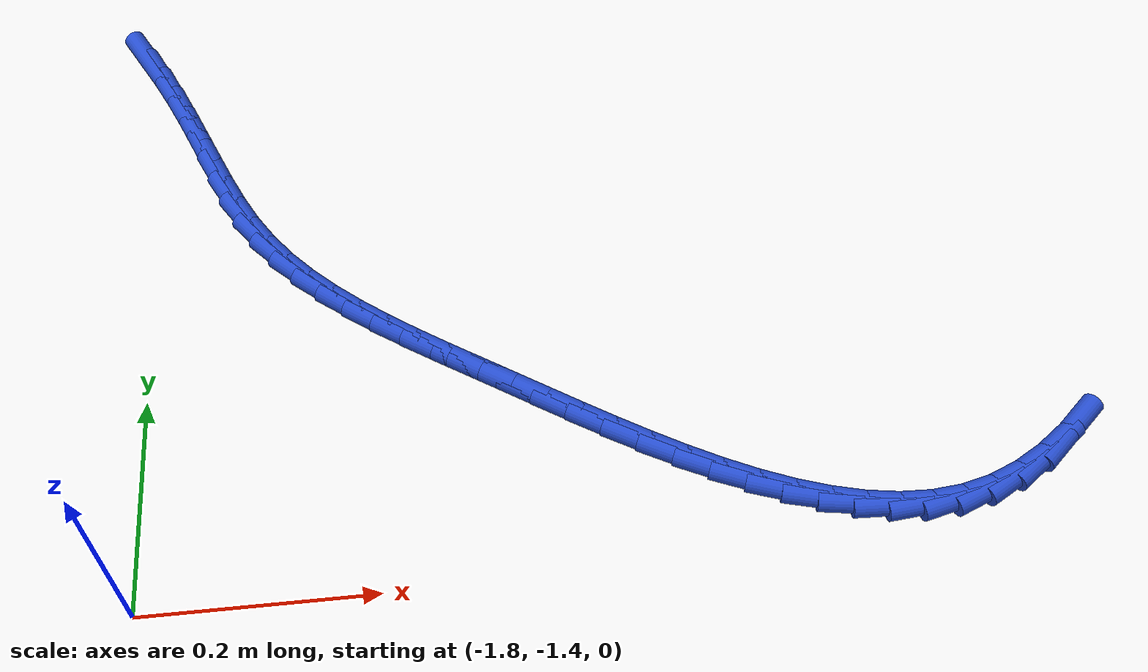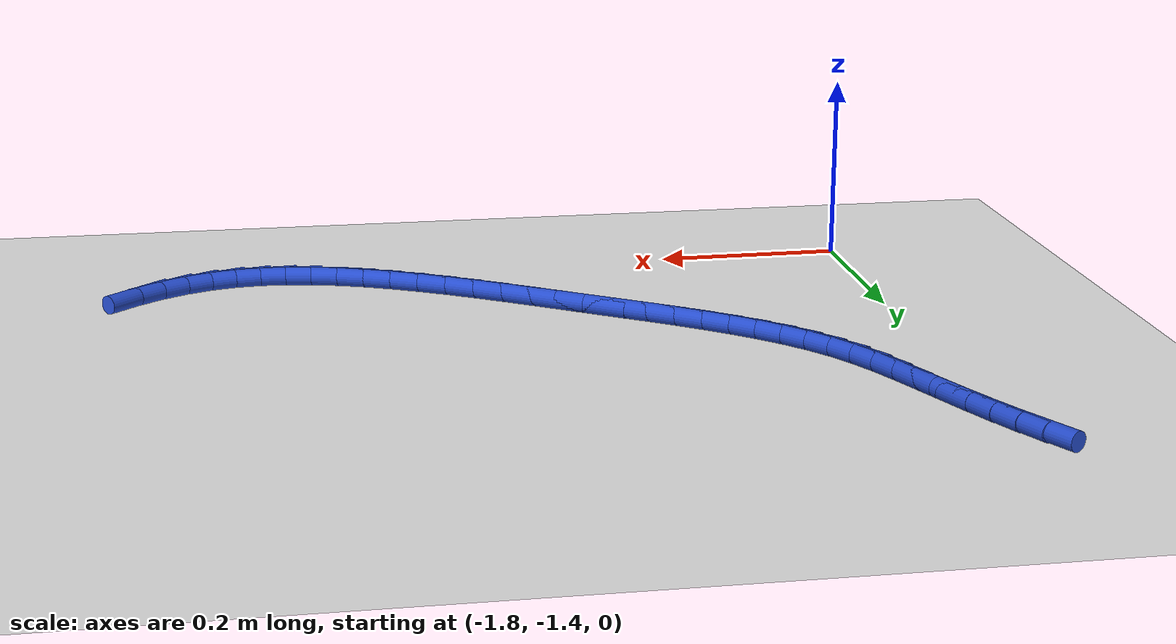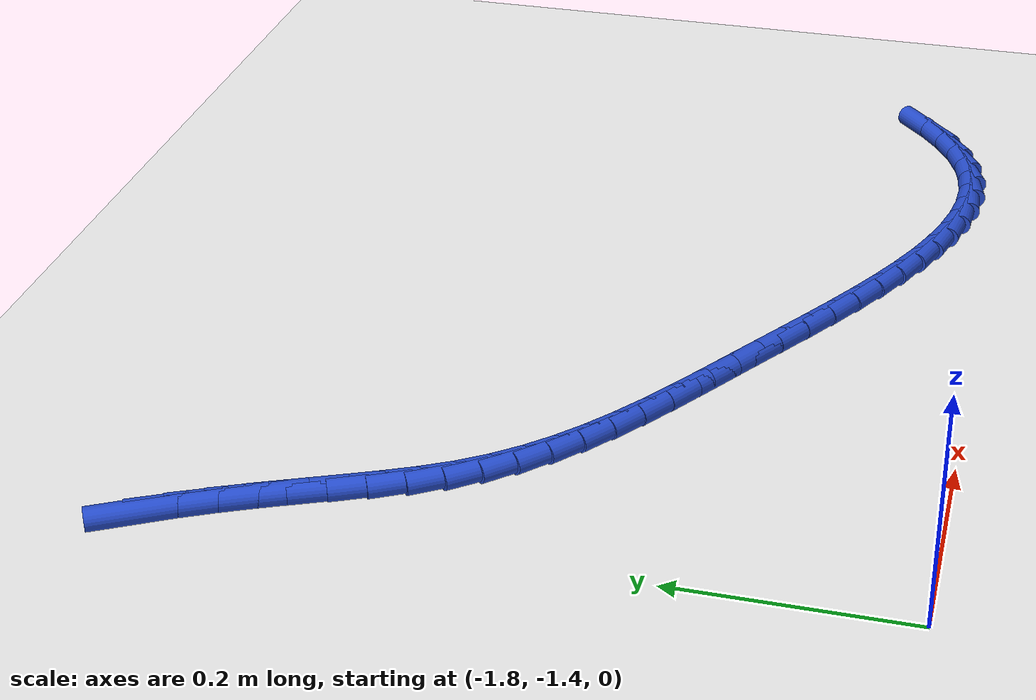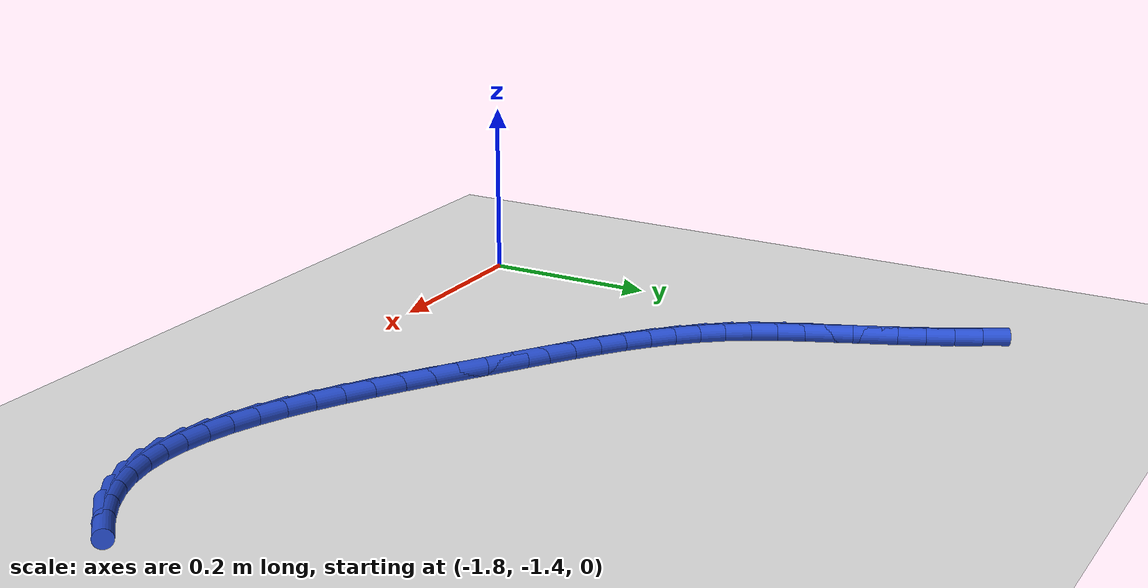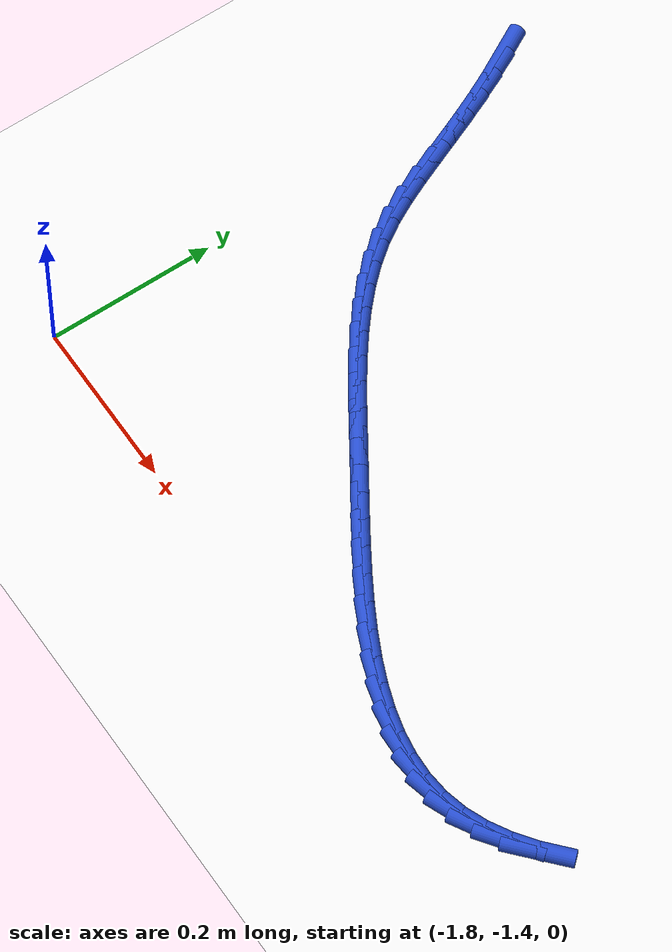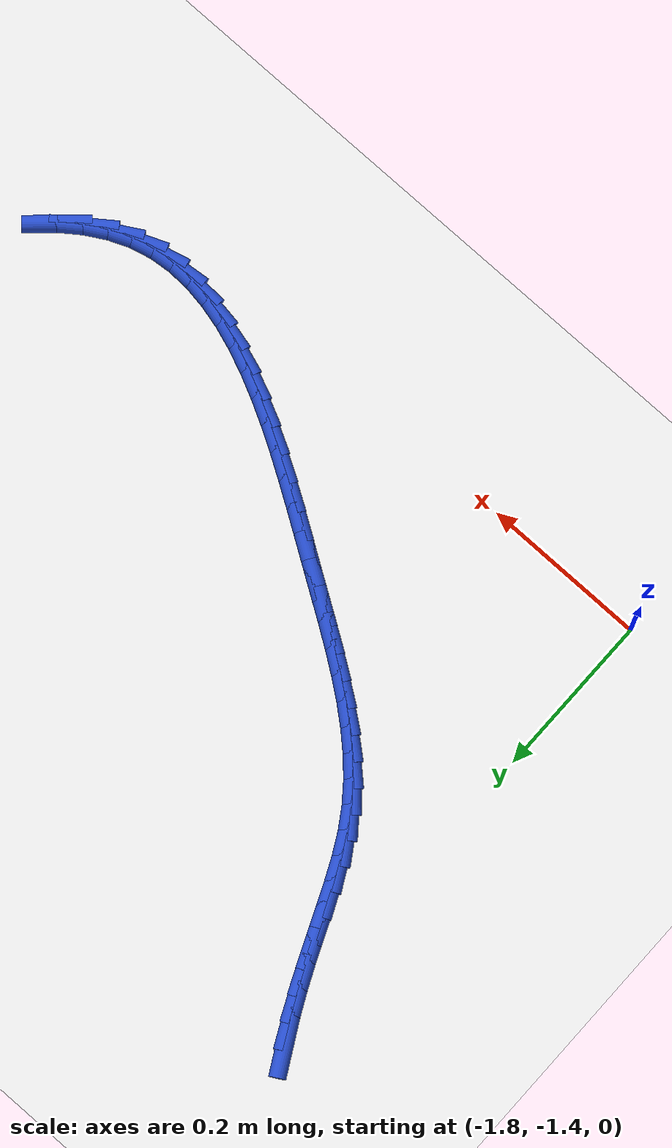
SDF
<sdf version="1.6">
 <world name="default">
  <model name="ground_plane">
   <static>1</static>
   <link name="link">
    <collision name="collision">
     <geometry><plane><normal>0 0 1</normal><size>100 100</size></plane></geometry>
     <surface><friction><ode><mu>100</mu><mu2>50</mu2></ode></friction></surface>
    </collision>
    <visual name="visual">
     <cast_shadows>0</cast_shadows>
     <geometry><plane><normal>0 0 1</normal><size>100 100</size></plane></geometry>
     <material>
      <script><uri>file://media/materials/scripts/gazebo.material</uri><name>Gazebo/WhiteGlow</name></script>
     </material>
    </visual>
   </link>
  </model>
  <model name="line">
   <link name="link_182">
    <pose>-1.8173475851778393 -0.7965471816336429 0.01 0 1.57 -1.0694998148287806</pose>
    <collision name="collision">
     <geometry><cylinder><radius>0.01</radius><length>0.08</length></cylinder></geometry>
    </collision>
    <visual name="visual">
     <material>
      <script><name>Gazebo/Blue</name><uri>file://media/materials/scripts/gazebo.material</uri></script>
     </material>
     <geometry><cylinder><radius>0.01</radius><length>0.08</length></cylinder></geometry>
    </visual>
   </link>
   <link name="link_183">
    <pose>-1.8027269554555958 -0.8232277892248706 0.01 0 1.57 -1.110227697297597</pose>
    <collision name="collision">
     <geometry><cylinder><radius>0.01</radius><length>0.08</length></cylinder></geometry>
    </collision>
    <visual name="visual">
     <material>
      <script><name>Gazebo/Blue</name><uri>file://media/materials/scripts/gazebo.material</uri></script>
     </material>
     <geometry><cylinder><radius>0.01</radius><length>0.08</length></cylinder></geometry>
    </visual>
   </link>
   <link name="link_184">
    <pose>-1.7890777195884304 -0.8507376921996115 0.01 0 1.57 -1.1399820416937896</pose>
    <collision name="collision">
     <geometry><cylinder><radius>0.01</radius><length>0.08</length></cylinder></geometry>
    </collision>
    <visual name="visual">
     <material>
      <script><name>Gazebo/Blue</name><uri>file://media/materials/scripts/gazebo.material</uri></script>
     </material>
     <geometry><cylinder><radius>0.01</radius><length>0.08</length></cylinder></geometry>
    </visual>
   </link>
   <link name="link_185">
    <pose>-1.77616758610395 -0.878827201147214 0.01 0 1.57 -1.1592774583854792</pose>
    <collision name="collision">
     <geometry><cylinder><radius>0.01</radius><length>0.08</length></cylinder></geometry>
    </collision>
    <visual name="visual">
     <material>
      <script><name>Gazebo/Blue</name><uri>file://media/materials/scripts/gazebo.material</uri></script>
     </material>
     <geometry><cylinder><radius>0.01</radius><length>0.08</length></cylinder></geometry>
    </visual>
   </link>
   <link name="link_186">
    <pose>-1.7637642635297632 -0.9072466266570277 0.01 0 1.57 -1.1684322200425763</pose>
    <collision name="collision">
     <geometry><cylinder><radius>0.01</radius><length>0.08</length></cylinder></geometry>
    </collision>
    <visual name="visual">
     <material>
      <script><name>Gazebo/Blue</name><uri>file://media/materials/scripts/gazebo.material</uri></script>
     </material>
     <geometry><cylinder><radius>0.01</radius><length>0.08</length></cylinder></geometry>
    </visual>
   </link>
   <link name="link_187">
    <pose>-1.7516353381881433 -0.9357461990808756 0.01 0 1.57 -1.1639553266162606</pose>
    <collision name="collision">
     <geometry><cylinder><radius>0.01</radius><length>0.08</length></cylinder></geometry>
    </collision>
    <visual name="visual">
     <material>
      <script><name>Gazebo/Blue</name><uri>file://media/materials/scripts/gazebo.material</uri></script>
     </material>
     <geometry><cylinder><radius>0.01</radius><length>0.08</length></cylinder></geometry>
    </visual>
   </link>
   <link name="link_188">
    <pose>-1.739454949482357 -0.9640147934325719 0.01 0 1.57 -1.1354104939606835</pose>
    <collision name="collision">
     <geometry><cylinder><radius>0.01</radius><length>0.08</length></cylinder></geometry>
    </collision>
    <visual name="visual">
     <material>
      <script><name>Gazebo/Blue</name><uri>file://media/materials/scripts/gazebo.material</uri></script>
     </material>
     <geometry><cylinder><radius>0.01</radius><length>0.08</length></cylinder></geometry>
    </visual>
   </link>
   <link name="link_189">
    <pose>-1.7266372209373368 -0.991570563612035 0.01 0 1.57 -1.0795901575827531</pose>
    <collision name="collision">
     <geometry><cylinder><radius>0.01</radius><length>0.08</length></cylinder></geometry>
    </collision>
    <visual name="visual">
     <material>
      <script><name>Gazebo/Blue</name><uri>file://media/materials/scripts/gazebo.material</uri></script>
     </material>
     <geometry><cylinder><radius>0.01</radius><length>0.08</length></cylinder></geometry>
    </visual>
   </link>
   <link name="link_190">
    <pose>-1.7125514120078098 -1.0179022066872079 0.01 0 1.57 -0.9963986320067701</pose>
    <collision name="collision">
     <geometry><cylinder><radius>0.01</radius><length>0.08</length></cylinder></geometry>
    </collision>
    <visual name="visual">
     <material>
      <script><name>Gazebo/Blue</name><uri>file://media/materials/scripts/gazebo.material</uri></script>
     </material>
     <geometry><cylinder><radius>0.01</radius><length>0.08</length></cylinder></geometry>
    </visual>
   </link>
   <link name="link_191">
    <pose>-1.696607942338394 -1.042537098222639 0.01 0 1.57 -0.9067166155599121</pose>
    <collision name="collision">
     <geometry><cylinder><radius>0.01</radius><length>0.08</length></cylinder></geometry>
    </collision>
    <visual name="visual">
     <material>
      <script><name>Gazebo/Blue</name><uri>file://media/materials/scripts/gazebo.material</uri></script>
     </material>
     <geometry><cylinder><radius>0.01</radius><length>0.08</length></cylinder></geometry>
    </visual>
   </link>
   <link name="link_192">
    <pose>-1.6786826882383392 -1.065440006420595 0.01 0 1.57 -0.826086966885068</pose>
    <collision name="collision">
     <geometry><cylinder><radius>0.01</radius><length>0.08</length></cylinder></geometry>
    </collision>
    <visual name="visual">
     <material>
      <script><name>Gazebo/Blue</name><uri>file://media/materials/scripts/gazebo.material</uri></script>
     </material>
     <geometry><cylinder><radius>0.01</radius><length>0.08</length></cylinder></geometry>
    </visual>
   </link>
   <link name="link_193">
    <pose>-1.6589457468410744 -1.0868521806944513 0.01 0 1.57 -0.7563543752907701</pose>
    <collision name="collision">
     <geometry><cylinder><radius>0.01</radius><length>0.08</length></cylinder></geometry>
    </collision>
    <visual name="visual">
     <material>
      <script><name>Gazebo/Blue</name><uri>file://media/materials/scripts/gazebo.material</uri></script>
     </material>
     <geometry><cylinder><radius>0.01</radius><length>0.08</length></cylinder></geometry>
    </visual>
   </link>
   <link name="link_194">
    <pose>-1.6375718531617232 -1.1070192287050045 0.01 0 1.57 -0.6982796246898717</pose>
    <collision name="collision">
     <geometry><cylinder><radius>0.01</radius><length>0.08</length></cylinder></geometry>
    </collision>
    <visual name="visual">
     <material>
      <script><name>Gazebo/Blue</name><uri>file://media/materials/scripts/gazebo.material</uri></script>
     </material>
     <geometry><cylinder><radius>0.01</radius><length>0.08</length></cylinder></geometry>
    </visual>
   </link>
   <link name="link_195">
    <pose>-1.6147357422154096 -1.1261867581130507 0.01 0 1.57 -0.6519610008135013</pose>
    <collision name="collision">
     <geometry><cylinder><radius>0.01</radius><length>0.08</length></cylinder></geometry>
    </collision>
    <visual name="visual">
     <material>
      <script><name>Gazebo/Blue</name><uri>file://media/materials/scripts/gazebo.material</uri></script>
     </material>
     <geometry><cylinder><radius>0.01</radius><length>0.08</length></cylinder></geometry>
    </visual>
   </link>
   <link name="link_196">
    <pose>-1.590612149017256 -1.1446003765793857 0.01 0 1.57 -0.6170768584356789</pose>
    <collision name="collision">
     <geometry><cylinder><radius>0.01</radius><length>0.08</length></cylinder></geometry>
    </collision>
    <visual name="visual">
     <material>
      <script><name>Gazebo/Blue</name><uri>file://media/materials/scripts/gazebo.material</uri></script>
     </material>
     <geometry><cylinder><radius>0.01</radius><length>0.08</length></cylinder></geometry>
    </visual>
   </link>
   <link name="link_197">
    <pose>-1.565375808582387 -1.1625056917648062 0.01 0 1.57 -0.593091409886716</pose>
    <collision name="collision">
     <geometry><cylinder><radius>0.01</radius><length>0.08</length></cylinder></geometry>
    </collision>
    <visual name="visual">
     <material>
      <script><name>Gazebo/Blue</name><uri>file://media/materials/scripts/gazebo.material</uri></script>
     </material>
     <geometry><cylinder><radius>0.01</radius><length>0.08</length></cylinder></geometry>
    </visual>
   </link>
   <link name="link_198">
    <pose>-1.539201455925925 -1.180148311330108 0.01 0 1.57 -0.5793983794186052</pose>
    <collision name="collision">
     <geometry><cylinder><radius>0.01</radius><length>0.08</length></cylinder></geometry>
    </collision>
    <visual name="visual">
     <material>
      <script><name>Gazebo/Blue</name><uri>file://media/materials/scripts/gazebo.material</uri></script>
     </material>
     <geometry><cylinder><radius>0.01</radius><length>0.08</length></cylinder></geometry>
    </visual>
   </link>
   <link name="link_199">
    <pose>-1.5122638260629935 -1.1977738429360878 0.01 0 1.57 -0.5754051401012524</pose>
    <collision name="collision">
     <geometry><cylinder><radius>0.01</radius><length>0.08</length></cylinder></geometry>
    </collision>
    <visual name="visual">
     <material>
      <script><name>Gazebo/Blue</name><uri>file://media/materials/scripts/gazebo.material</uri></script>
     </material>
     <geometry><cylinder><radius>0.01</radius><length>0.08</length></cylinder></geometry>
    </visual>
   </link>
   <link name="link_200">
    <pose>-1.4847376540087178 -1.2156278942435412 0.01 0 1.57 -0.5783416657221347</pose>
    <collision name="collision">
     <geometry><cylinder><radius>0.01</radius><length>0.08</length></cylinder></geometry>
    </collision>
    <visual name="visual">
     <material>
      <script><name>Gazebo/Blue</name><uri>file://media/materials/scripts/gazebo.material</uri></script>
     </material>
     <geometry><cylinder><radius>0.01</radius><length>0.08</length></cylinder></geometry>
    </visual>
   </link>
   <link name="link_201">
    <pose>-1.4567834002000963 -1.2338764549420234 0.01 0 1.57 -0.5770452240322432</pose>
    <collision name="collision">
     <geometry><cylinder><radius>0.01</radius><length>0.08</length></cylinder></geometry>
    </collision>
    <visual name="visual">
     <material>
      <script><name>Gazebo/Blue</name><uri>file://media/materials/scripts/gazebo.material</uri></script>
     </material>
     <geometry><cylinder><radius>0.01</radius><length>0.08</length></cylinder></geometry>
    </visual>
   </link>
   <link name="link_202">
    <pose>-1.4284912148315718 -1.2522933518969697 0.01 0 1.57 -0.568296972839006</pose>
    <collision name="collision">
     <geometry><cylinder><radius>0.01</radius><length>0.08</length></cylinder></geometry>
    </collision>
    <visual name="visual">
     <material>
      <script><name>Gazebo/Blue</name><uri>file://media/materials/scripts/gazebo.material</uri></script>
     </material>
     <geometry><cylinder><radius>0.01</radius><length>0.08</length></cylinder></geometry>
    </visual>
   </link>
   <link name="link_203">
    <pose>-1.3999296371841834 -1.2705318748156011 0.01 0 1.57 -0.5519939625019736</pose>
    <collision name="collision">
     <geometry><cylinder><radius>0.01</radius><length>0.08</length></cylinder></geometry>
    </collision>
    <visual name="visual">
     <material>
      <script><name>Gazebo/Blue</name><uri>file://media/materials/scripts/gazebo.material</uri></script>
     </material>
     <geometry><cylinder><radius>0.01</radius><length>0.08</length></cylinder></geometry>
    </visual>
   </link>
   <link name="link_204">
    <pose>-1.3711672006761748 -1.2882452807047662 0.01 0 1.57 -0.5277197920994742</pose>
    <collision name="collision">
     <geometry><cylinder><radius>0.01</radius><length>0.08</length></cylinder></geometry>
    </collision>
    <visual name="visual">
     <material>
      <script><name>Gazebo/Blue</name><uri>file://media/materials/scripts/gazebo.material</uri></script>
     </material>
     <geometry><cylinder><radius>0.01</radius><length>0.08</length></cylinder></geometry>
    </visual>
   </link>
   <link name="link_205">
    <pose>-1.342272438725789 -1.3050868265713116 0.01 0 1.57 -0.4947407961053934</pose>
    <collision name="collision">
     <geometry><cylinder><radius>0.01</radius><length>0.08</length></cylinder></geometry>
    </collision>
    <visual name="visual">
     <material>
      <script><name>Gazebo/Blue</name><uri>file://media/materials/scripts/gazebo.material</uri></script>
     </material>
     <geometry><cylinder><radius>0.01</radius><length>0.08</length></cylinder></geometry>
    </visual>
   </link>
   <link name="link_206">
    <pose>-1.313313884751268 -1.3207097694220855 0.01 0 1.57 -0.45199502298258937</pose>
    <collision name="collision">
     <geometry><cylinder><radius>0.01</radius><length>0.08</length></cylinder></geometry>
    </collision>
    <visual name="visual">
     <material>
      <script><name>Gazebo/Blue</name><uri>file://media/materials/scripts/gazebo.material</uri></script>
     </material>
     <geometry><cylinder><radius>0.01</radius><length>0.08</length></cylinder></geometry>
    </visual>
   </link>
   <link name="link_207">
    <pose>-1.2843600721708552 -1.3347673662639354 0.01 0 1.57 -0.39808947516357074</pose>
    <collision name="collision">
     <geometry><cylinder><radius>0.01</radius><length>0.08</length></cylinder></geometry>
    </collision>
    <visual name="visual">
     <material>
      <script><name>Gazebo/Blue</name><uri>file://media/materials/scripts/gazebo.material</uri></script>
     </material>
     <geometry><cylinder><radius>0.01</radius><length>0.08</length></cylinder></geometry>
    </visual>
   </link>
   <link name="link_208">
    <pose>-1.2554795344027923 -1.3469128741037089 0.01 0 1.57 -0.3313368427941242</pose>
    <collision name="collision">
     <geometry><cylinder><radius>0.01</radius><length>0.08</length></cylinder></geometry>
    </collision>
    <visual name="visual">
     <material>
      <script><name>Gazebo/Blue</name><uri>file://media/materials/scripts/gazebo.material</uri></script>
     </material>
     <geometry><cylinder><radius>0.01</radius><length>0.08</length></cylinder></geometry>
    </visual>
   </link>
   <link name="link_209">
    <pose>-1.226740804865324 -1.3567995499482535 0.01 0 1.57 -0.24988835836606232</pose>
    <collision name="collision">
     <geometry><cylinder><radius>0.01</radius><length>0.08</length></cylinder></geometry>
    </collision>
    <visual name="visual">
     <material>
      <script><name>Gazebo/Blue</name><uri>file://media/materials/scripts/gazebo.material</uri></script>
     </material>
     <geometry><cylinder><radius>0.01</radius><length>0.08</length></cylinder></geometry>
    </visual>
   </link>
   <link name="link_210">
    <pose>-1.1982124169766923 -1.364080650804416 0.01 0 1.57 -0.1520511706168363</pose>
    <collision name="collision">
     <geometry><cylinder><radius>0.01</radius><length>0.08</length></cylinder></geometry>
    </collision>
    <visual name="visual">
     <material>
      <script><name>Gazebo/Blue</name><uri>file://media/materials/scripts/gazebo.material</uri></script>
     </material>
     <geometry><cylinder><radius>0.01</radius><length>0.08</length></cylinder></geometry>
    </visual>
   </link>
   <link name="link_211">
    <pose>-1.1699629041551405 -1.368409433679046 0.01 0 1.57 -0.03688807078559853</pose>
    <collision name="collision">
     <geometry><cylinder><radius>0.01</radius><length>0.08</length></cylinder></geometry>
    </collision>
    <visual name="visual">
     <material>
      <script><name>Gazebo/Blue</name><uri>file://media/materials/scripts/gazebo.material</uri></script>
     </material>
     <geometry><cylinder><radius>0.01</radius><length>0.08</length></cylinder></geometry>
    </visual>
   </link>
   <link name="link_212">
    <pose>-1.1420607998189103 -1.3694391555789895 0.01 0 1.57 0.09489229877128857</pose>
    <collision name="collision">
     <geometry><cylinder><radius>0.01</radius><length>0.08</length></cylinder></geometry>
    </collision>
    <visual name="visual">
     <material>
      <script><name>Gazebo/Blue</name><uri>file://media/materials/scripts/gazebo.material</uri></script>
     </material>
     <geometry><cylinder><radius>0.01</radius><length>0.08</length></cylinder></geometry>
    </visual>
   </link>
   <link name="link_213">
    <pose>-1.1145746373862455 -1.366823073511095 0.01 0 1.57 0.2400206586945976</pose>
    <collision name="collision">
     <geometry><cylinder><radius>0.01</radius><length>0.08</length></cylinder></geometry>
    </collision>
    <visual name="visual">
     <material>
      <script><name>Gazebo/Blue</name><uri>file://media/materials/scripts/gazebo.material</uri></script>
     </material>
     <geometry><cylinder><radius>0.01</radius><length>0.08</length></cylinder></geometry>
    </visual>
   </link>
   <link name="link_214">
    <pose>-1.0875729979537347 -1.3602147301140008 0.01 0 1.57 0.38705850351065935</pose>
    <collision name="collision">
     <geometry><cylinder><radius>0.01</radius><length>0.08</length></cylinder></geometry>
    </collision>
    <visual name="visual">
     <material>
      <script><name>Gazebo/Blue</name><uri>file://media/materials/scripts/gazebo.material</uri></script>
     </material>
     <geometry><cylinder><radius>0.01</radius><length>0.08</length></cylinder></geometry>
    </visual>
   </link>
   <link name="link_215">
    <pose>-1.061154211867771 -1.3494458900523898 0.01 0 1.57 0.5177979818847197</pose>
    <collision name="collision">
     <geometry><cylinder><radius>0.01</radius><length>0.08</length></cylinder></geometry>
    </collision>
    <visual name="visual">
     <material>
      <script><name>Gazebo/Blue</name><uri>file://media/materials/scripts/gazebo.material</uri></script>
     </material>
     <geometry><cylinder><radius>0.01</radius><length>0.08</length></cylinder></geometry>
    </visual>
   </link>
   <link name="link_216">
    <pose>-1.0354971019115682 -1.3348305326775813 0.01 0 1.57 0.631471148075826</pose>
    <collision name="collision">
     <geometry><cylinder><radius>0.01</radius><length>0.08</length></cylinder></geometry>
    </collision>
    <visual name="visual">
     <material>
      <script><name>Gazebo/Blue</name><uri>file://media/materials/scripts/gazebo.material</uri></script>
     </material>
     <geometry><cylinder><radius>0.01</radius><length>0.08</length></cylinder></geometry>
    </visual>
   </link>
   <link name="link_217">
    <pose>-1.0107939710753984 -1.316763394665179 0.01 0 1.57 0.7310066849639054</pose>
    <collision name="collision">
     <geometry><cylinder><radius>0.01</radius><length>0.08</length></cylinder></geometry>
    </collision>
    <visual name="visual">
     <material>
      <script><name>Gazebo/Blue</name><uri>file://media/materials/scripts/gazebo.material</uri></script>
     </material>
     <geometry><cylinder><radius>0.01</radius><length>0.08</length></cylinder></geometry>
    </visual>
   </link>
  </model>
 </world>
</sdf>
